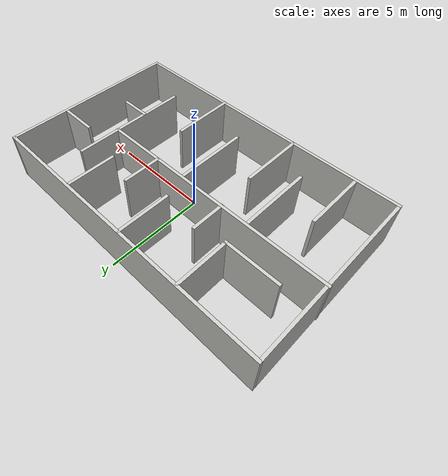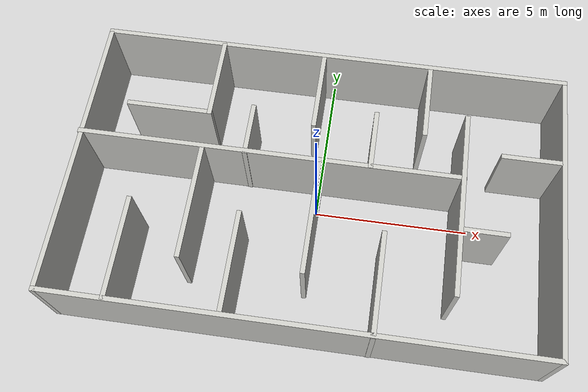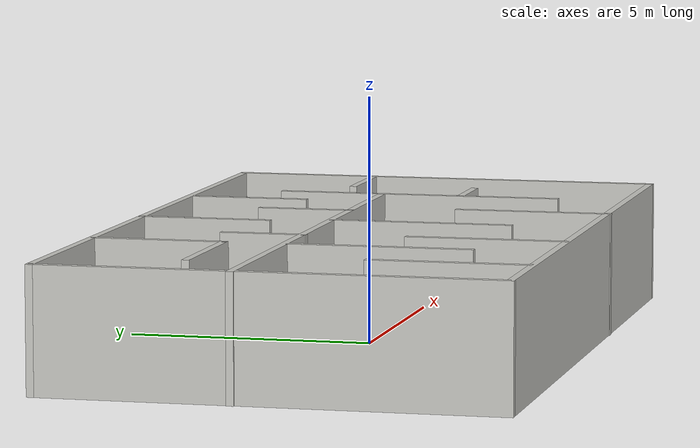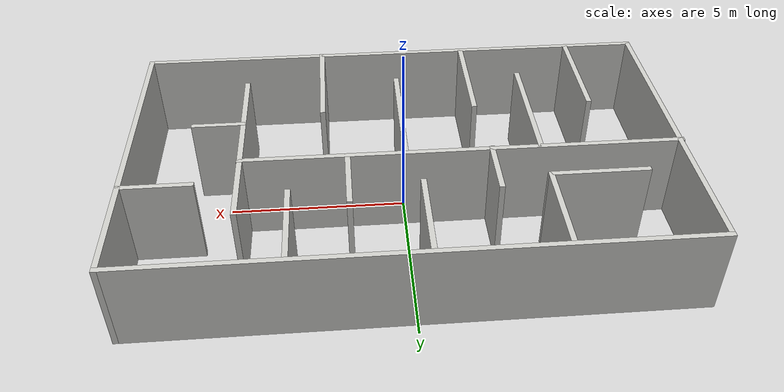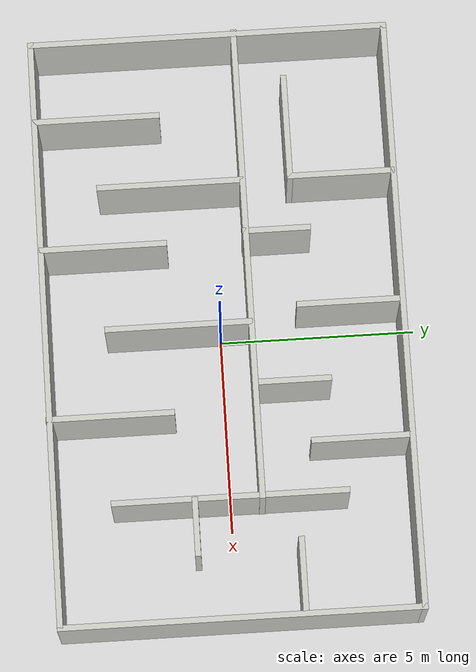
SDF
<?xml version='1.0'?>
<sdf version='1.7'>
  <model name='map_1'>
    <pose>-0.064131 0.09989 0 0 -0 0</pose>
    <link name='Wall_1'>
      <collision name='Wall_1_Collision'>
        <geometry>
          <box>
            <size>15.25 0.15 2.5</size>
          </box>
        </geometry>
        <pose>0 0 1.25 0 -0 0</pose>
      </collision>
      <visual name='Wall_1_Visual'>
        <pose>0 0 1.25 0 -0 0</pose>
        <geometry>
          <box>
            <size>15.25 0.15 2.5</size>
          </box>
        </geometry>
        <material>
          <script>
            <uri>file://media/materials/scripts/gazebo.material</uri>
            <name>Gazebo/CeilingTiled</name>
          </script>
          <ambient>1 1 1 1</ambient>
        </material>
        <meta>
          <layer>0</layer>
        </meta>
      </visual>
      <pose>0.01935 -4.54171 0 0 -0 0</pose>
    </link>
    <link name='Wall_10'>
      <collision name='Wall_10_Collision'>
        <geometry>
          <box>
            <size>3.75 0.15 2.5</size>
          </box>
        </geometry>
        <pose>0 0 1.25 0 -0 0</pose>
      </collision>
      <visual name='Wall_10_Visual'>
        <pose>0 0 1.25 0 -0 0</pose>
        <geometry>
          <box>
            <size>3.75 0.15 2.5</size>
          </box>
        </geometry>
        <material>
          <script>
            <uri>file://media/materials/scripts/gazebo.material</uri>
            <name>Gazebo/CeilingTiled</name>
          </script>
          <ambient>1 1 1 1</ambient>
        </material>
        <meta>
          <layer>0</layer>
        </meta>
      </visual>
      <pose>-3.64785 -1.1659 0 0 -0 -1.5708</pose>
    </link>
    <link name='Wall_12'>
      <collision name='Wall_12_Collision'>
        <geometry>
          <box>
            <size>12.25 0.15 2.5</size>
          </box>
        </geometry>
        <pose>0 0 1.25 0 -0 0</pose>
      </collision>
      <visual name='Wall_12_Visual'>
        <pose>0 0 1.25 0 -0 0</pose>
        <geometry>
          <box>
            <size>12.25 0.15 2.5</size>
          </box>
        </geometry>
        <material>
          <script>
            <uri>file://media/materials/scripts/gazebo.material</uri>
            <name>Gazebo/CeilingTiled</name>
          </script>
          <ambient>1 1 1 1</ambient>
        </material>
        <meta>
          <layer>0</layer>
        </meta>
      </visual>
      <pose>-1.51935 0.691596 0 0 -0 0</pose>
    </link>
    <link name='Wall_14'>
      <collision name='Wall_14_Collision'>
        <geometry>
          <box>
            <size>3.75 0.15 2.5</size>
          </box>
        </geometry>
        <pose>0 0 1.25 0 -0 0</pose>
      </collision>
      <visual name='Wall_14_Visual'>
        <pose>0 0 1.25 0 -0 0</pose>
        <geometry>
          <box>
            <size>3.75 0.15 2.5</size>
          </box>
        </geometry>
        <material>
          <script>
            <uri>file://media/materials/scripts/gazebo.material</uri>
            <name>Gazebo/CeilingTiled</name>
          </script>
          <ambient>1 1 1 1</ambient>
        </material>
        <meta>
          <layer>0</layer>
        </meta>
      </visual>
      <pose>0.056381 -1.15762 0 0 -0 -1.5708</pose>
    </link>
    <link name='Wall_17'>
      <collision name='Wall_17_Collision'>
        <geometry>
          <box>
            <size>3.25 0.15 2.5</size>
          </box>
        </geometry>
        <pose>0 0 1.25 0 -0 0</pose>
      </collision>
      <visual name='Wall_17_Visual'>
        <pose>0 0 1.25 0 -0 0</pose>
        <geometry>
          <box>
            <size>3.25 0.15 2.5</size>
          </box>
        </geometry>
        <material>
          <script>
            <uri>file://media/materials/scripts/gazebo.material</uri>
            <name>Gazebo/CeilingTiled</name>
          </script>
          <ambient>1 1 1 1</ambient>
        </material>
        <meta>
          <layer>0</layer>
        </meta>
      </visual>
      <pose>2.28309 -3.00829 0 0 -0 1.5708</pose>
    </link>
    <link name='Wall_19'>
      <collision name='Wall_19_Collision'>
        <geometry>
          <box>
            <size>6 0.15 2.5</size>
          </box>
        </geometry>
        <pose>0 0 1.25 0 -0 0</pose>
      </collision>
      <visual name='Wall_19_Visual'>
        <pose>0 0 1.25 0 -0 0</pose>
        <geometry>
          <box>
            <size>6 0.15 2.5</size>
          </box>
        </geometry>
        <material>
          <script>
            <uri>file://media/materials/scripts/gazebo.material</uri>
            <name>Gazebo/CeilingTiled</name>
          </script>
          <ambient>1 1 1 1</ambient>
        </material>
        <meta>
          <layer>0</layer>
        </meta>
      </visual>
      <pose>4.51809 -0.110074 0 0 -0 -1.5708</pose>
    </link>
    <link name='Wall_2'>
      <collision name='Wall_2_Collision'>
        <geometry>
          <box>
            <size>9.25 0.15 2.5</size>
          </box>
        </geometry>
        <pose>0 0 1.25 0 -0 0</pose>
      </collision>
      <visual name='Wall_2_Visual'>
        <pose>0 0 1.25 0 -0 0</pose>
        <geometry>
          <box>
            <size>9.25 0.15 2.5</size>
          </box>
        </geometry>
        <material>
          <script>
            <uri>file://media/materials/scripts/gazebo.material</uri>
            <name>Gazebo/CeilingTiled</name>
          </script>
          <ambient>1 1 1 1</ambient>
        </material>
        <meta>
          <layer>0</layer>
        </meta>
      </visual>
      <pose>7.56935 0.008287 0 0 -0 1.5708</pose>
    </link>
    <link name='Wall_21'>
      <collision name='Wall_21_Collision'>
        <geometry>
          <box>
            <size>1.5 0.15 2.5</size>
          </box>
        </geometry>
        <pose>0 0 1.25 0 -0 0</pose>
      </collision>
      <visual name='Wall_21_Visual'>
        <pose>0 0 1.25 0 -0 0</pose>
        <geometry>
          <box>
            <size>1.5 0.15 2.5</size>
          </box>
        </geometry>
        <material>
          <script>
            <uri>file://media/materials/scripts/gazebo.material</uri>
            <name>Gazebo/CeilingTiled</name>
          </script>
          <ambient>1 1 1 1</ambient>
        </material>
        <meta>
          <layer>0</layer>
        </meta>
      </visual>
      <pose>5.21953 -1.0071 0 0 -0 0</pose>
    </link>
    <link name='Wall_23'>
      <collision name='Wall_23_Collision'>
        <geometry>
          <box>
            <size>2 0.15 2.5</size>
          </box>
        </geometry>
        <pose>0 0 1.25 0 -0 0</pose>
      </collision>
      <visual name='Wall_23_Visual'>
        <pose>0 0 1.25 0 -0 0</pose>
        <geometry>
          <box>
            <size>2 0.15 2.5</size>
          </box>
        </geometry>
        <material>
          <script>
            <uri>file://media/materials/scripts/gazebo.material</uri>
            <name>Gazebo/CeilingTiled</name>
          </script>
          <ambient>1 1 1 1</ambient>
        </material>
        <meta>
          <layer>0</layer>
        </meta>
      </visual>
      <pose>6.62161 1.59823 0 0 -0 3.14159</pose>
    </link>
    <link name='Wall_25'>
      <collision name='Wall_25_Collision'>
        <geometry>
          <box>
            <size>2.5 0.15 2.5</size>
          </box>
        </geometry>
        <pose>0 0 1.25 0 -0 0</pose>
      </collision>
      <visual name='Wall_25_Visual'>
        <pose>0 0 1.25 0 -0 0</pose>
        <geometry>
          <box>
            <size>2.5 0.15 2.5</size>
          </box>
        </geometry>
        <material>
          <script>
            <uri>file://media/materials/scripts/gazebo.material</uri>
            <name>Gazebo/CeilingTiled</name>
          </script>
          <ambient>1 1 1 1</ambient>
        </material>
        <meta>
          <layer>0</layer>
        </meta>
      </visual>
      <pose>3.20881 3.25338 0 0 -0 -1.5708</pose>
    </link>
    <link name='Wall_27'>
      <collision name='Wall_27_Collision'>
        <geometry>
          <box>
            <size>2 0.15 2.5</size>
          </box>
        </geometry>
        <pose>0 0 1.25 0 -0 0</pose>
      </collision>
      <visual name='Wall_27_Visual'>
        <pose>0 0 1.25 0 -0 0</pose>
        <geometry>
          <box>
            <size>2 0.15 2.5</size>
          </box>
        </geometry>
        <material>
          <script>
            <uri>file://media/materials/scripts/gazebo.material</uri>
            <name>Gazebo/CeilingTiled</name>
          </script>
          <ambient>1 1 1 1</ambient>
        </material>
        <meta>
          <layer>0</layer>
        </meta>
      </visual>
      <pose>1.63504 1.62393 0 0 -0 1.5708</pose>
    </link>
    <link name='Wall_29'>
      <collision name='Wall_29_Collision'>
        <geometry>
          <box>
            <size>2.75 0.15 2.5</size>
          </box>
        </geometry>
        <pose>0 0 1.25 0 -0 0</pose>
      </collision>
      <visual name='Wall_29_Visual'>
        <pose>0 0 1.25 0 -0 0</pose>
        <geometry>
          <box>
            <size>2.75 0.15 2.5</size>
          </box>
        </geometry>
        <material>
          <script>
            <uri>file://media/materials/scripts/gazebo.material</uri>
            <name>Gazebo/CeilingTiled</name>
          </script>
          <ambient>1 1 1 1</ambient>
        </material>
        <meta>
          <layer>0</layer>
        </meta>
      </visual>
      <pose>-3.66932 3.20409 0 0 -0 -1.5708</pose>
    </link>
    <link name='Wall_3'>
      <collision name='Wall_3_Collision'>
        <geometry>
          <box>
            <size>15.25 0.15 2.5</size>
          </box>
        </geometry>
        <pose>0 0 1.25 0 -0 0</pose>
      </collision>
      <visual name='Wall_3_Visual'>
        <pose>0 0 1.25 0 -0 0</pose>
        <geometry>
          <box>
            <size>15.25 0.15 2.5</size>
          </box>
        </geometry>
        <material>
          <script>
            <uri>file://media/materials/scripts/gazebo.material</uri>
            <name>Gazebo/CeilingTiled</name>
          </script>
          <ambient>1 1 1 1</ambient>
        </material>
        <meta>
          <layer>0</layer>
        </meta>
      </visual>
      <pose>0.01935 4.55829 0 0 -0 3.14159</pose>
    </link>
    <link name='Wall_31'>
      <collision name='Wall_31_Collision'>
        <geometry>
          <box>
            <size>2.75 0.15 2.5</size>
          </box>
        </geometry>
        <pose>0 0 1.25 0 -0 0</pose>
      </collision>
      <visual name='Wall_31_Visual'>
        <pose>0 0 1.25 0 -0 0</pose>
        <geometry>
          <box>
            <size>2.75 0.15 2.5</size>
          </box>
        </geometry>
        <material>
          <script>
            <uri>file://media/materials/scripts/gazebo.material</uri>
            <name>Gazebo/CeilingTiled</name>
          </script>
          <ambient>1 1 1 1</ambient>
        </material>
        <meta>
          <layer>0</layer>
        </meta>
      </visual>
      <pose>-0.308186 3.23451 0 0 -0 -1.5708</pose>
    </link>
    <link name='Wall_34'>
      <collision name='Wall_34_Collision'>
        <geometry>
          <box>
            <size>1.75 0.15 2.5</size>
          </box>
        </geometry>
        <pose>0 0 1.25 0 -0 0</pose>
      </collision>
      <visual name='Wall_34_Visual'>
        <pose>0 0 1.25 0 -0 0</pose>
        <geometry>
          <box>
            <size>1.75 0.15 2.5</size>
          </box>
        </geometry>
        <material>
          <script>
            <uri>file://media/materials/scripts/gazebo.material</uri>
            <name>Gazebo/CeilingTiled</name>
          </script>
          <ambient>1 1 1 1</ambient>
        </material>
        <meta>
          <layer>0</layer>
        </meta>
      </visual>
      <pose>-2.30053 1.47149 0 0 -0 1.5708</pose>
    </link>
    <link name='Wall_36'>
      <collision name='Wall_36_Collision'>
        <geometry>
          <box>
            <size>2.75 0.15 2.5</size>
          </box>
        </geometry>
        <pose>0 0 1.25 0 -0 0</pose>
      </collision>
      <visual name='Wall_36_Visual'>
        <pose>0 0 1.25 0 -0 0</pose>
        <geometry>
          <box>
            <size>2.75 0.15 2.5</size>
          </box>
        </geometry>
        <material>
          <script>
            <uri>file://media/materials/scripts/gazebo.material</uri>
            <name>Gazebo/CeilingTiled</name>
          </script>
          <ambient>1 1 1 1</ambient>
        </material>
        <meta>
          <layer>0</layer>
        </meta>
      </visual>
      <pose>-4.96932 1.90409 0 0 -0 3.14159</pose>
    </link>
    <link name='Wall_4'>
      <collision name='Wall_4_Collision'>
        <geometry>
          <box>
            <size>9.25 0.15 2.5</size>
          </box>
        </geometry>
        <pose>0 0 1.25 0 -0 0</pose>
      </collision>
      <visual name='Wall_4_Visual'>
        <pose>0 0 1.25 0 -0 0</pose>
        <geometry>
          <box>
            <size>9.25 0.15 2.5</size>
          </box>
        </geometry>
        <material>
          <script>
            <uri>file://media/materials/scripts/gazebo.material</uri>
            <name>Gazebo/CeilingTiled</name>
          </script>
          <ambient>1 1 1 1</ambient>
        </material>
        <meta>
          <layer>0</layer>
        </meta>
      </visual>
      <pose>-7.53065 0.008287 0 0 -0 -1.5708</pose>
    </link>
    <link name='Wall_6'>
      <collision name='Wall_6_Collision'>
        <geometry>
          <box>
            <size>3.25 0.15 2.5</size>
          </box>
        </geometry>
        <pose>0 0 1.25 0 -0 0</pose>
      </collision>
      <visual name='Wall_6_Visual'>
        <pose>0 0 1.25 0 -0 0</pose>
        <geometry>
          <box>
            <size>3.25 0.15 2.5</size>
          </box>
        </geometry>
        <material>
          <script>
            <uri>file://media/materials/scripts/gazebo.material</uri>
            <name>Gazebo/CeilingTiled</name>
          </script>
          <ambient>1 1 1 1</ambient>
        </material>
        <meta>
          <layer>0</layer>
        </meta>
      </visual>
      <pose>-5.47747 -2.96129 0 0 -0 1.5708</pose>
    </link>
    <link name='Wall_8'>
      <collision name='Wall_8_Collision'>
        <geometry>
          <box>
            <size>3.25 0.15 2.5</size>
          </box>
        </geometry>
        <pose>0 0 1.25 0 -0 0</pose>
      </collision>
      <visual name='Wall_8_Visual'>
        <pose>0 0 1.25 0 -0 0</pose>
        <geometry>
          <box>
            <size>3.25 0.15 2.5</size>
          </box>
        </geometry>
        <material>
          <script>
            <uri>file://media/materials/scripts/gazebo.material</uri>
            <name>Gazebo/CeilingTiled</name>
          </script>
          <ambient>1 1 1 1</ambient>
        </material>
        <meta>
          <layer>0</layer>
        </meta>
      </visual>
      <pose>-2.10113 -2.96129 0 0 -0 1.5708</pose>
    </link>
    <static>1</static>
  </model>
</sdf>
